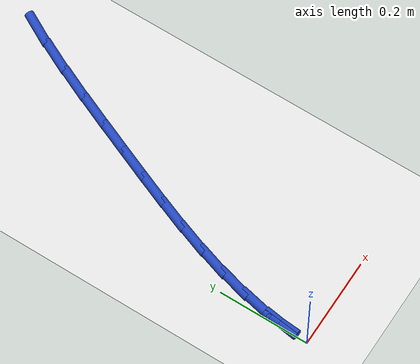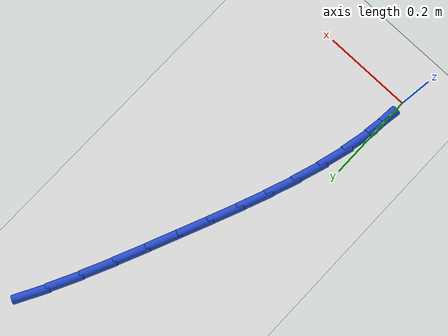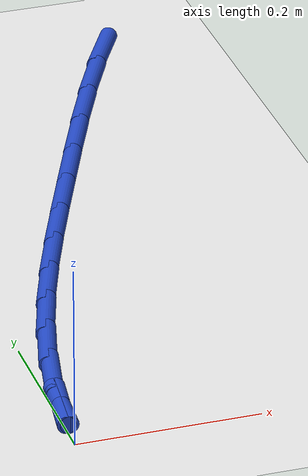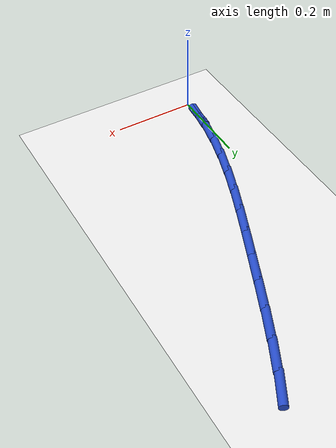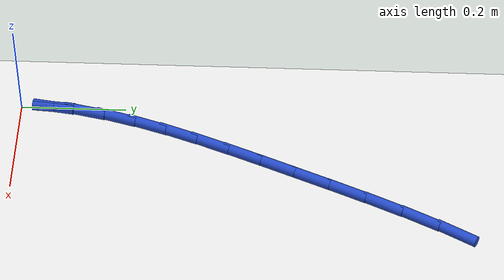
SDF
<sdf version="1.6">
 <world name="default">
  <model name="ground_plane">
   <static>1</static>
   <link name="link">
    <collision name="collision">
     <geometry><plane><normal>0 0 1</normal><size>100 100</size></plane></geometry>
     <surface><friction><ode><mu>100</mu><mu2>50</mu2></ode></friction></surface>
    </collision>
    <visual name="visual">
     <cast_shadows>0</cast_shadows>
     <geometry><plane><normal>0 0 1</normal><size>100 100</size></plane></geometry>
     <material>
      <script><uri>file://media/materials/scripts/gazebo.material</uri><name>Gazebo/WhiteGlow</name></script>
     </material>
    </visual>
   </link>
  </model>
  <model name="line">
   <link name="link_1">
    <pose>0.004672179094915834 0.06259822107621331 0.01 0 1.57 1.4215199979479367</pose>
    <collision name="collision">
     <geometry><cylinder><radius>0.01</radius><length>0.08</length></cylinder></geometry>
    </collision>
    <visual name="visual">
     <material>
      <script><name>Gazebo/Blue</name><uri>file://media/materials/scripts/gazebo.material</uri></script>
     </material>
     <geometry><cylinder><radius>0.01</radius><length>0.08</length></cylinder></geometry>
    </visual>
   </link>
   <link name="link_2">
    <pose>0.013919111966793286 0.12408249158248674 0.01 0 1.57 1.3548092900911957</pose>
    <collision name="collision">
     <geometry><cylinder><radius>0.01</radius><length>0.08</length></cylinder></geometry>
    </collision>
    <visual name="visual">
     <material>
      <script><name>Gazebo/Blue</name><uri>file://media/materials/scripts/gazebo.material</uri></script>
     </material>
     <geometry><cylinder><radius>0.01</radius><length>0.08</length></cylinder></geometry>
    </visual>
   </link>
   <link name="link_3">
    <pose>0.027253811271089255 0.18485787602229142 0.01 0 1.57 1.2977348618286708</pose>
    <collision name="collision">
     <geometry><cylinder><radius>0.01</radius><length>0.08</length></cylinder></geometry>
    </collision>
    <visual name="visual">
     <material>
      <script><name>Gazebo/Blue</name><uri>file://media/materials/scripts/gazebo.material</uri></script>
     </material>
     <geometry><cylinder><radius>0.01</radius><length>0.08</length></cylinder></geometry>
    </visual>
   </link>
   <link name="link_4">
    <pose>0.04418928966326085 0.24532943889909883 0.01 0 1.57 1.2511521294037746</pose>
    <collision name="collision">
     <geometry><cylinder><radius>0.01</radius><length>0.08</length></cylinder></geometry>
    </collision>
    <visual name="visual">
     <material>
      <script><name>Gazebo/Blue</name><uri>file://media/materials/scripts/gazebo.material</uri></script>
     </material>
     <geometry><cylinder><radius>0.01</radius><length>0.08</length></cylinder></geometry>
    </visual>
   </link>
   <link name="link_5">
    <pose>0.06423855979876497 0.30590224471637995 0.01 0 1.57 1.2153108453634482</pose>
    <collision name="collision">
     <geometry><cylinder><radius>0.01</radius><length>0.08</length></cylinder></geometry>
    </collision>
    <visual name="visual">
     <material>
      <script><name>Gazebo/Blue</name><uri>file://media/materials/scripts/gazebo.material</uri></script>
     </material>
     <geometry><cylinder><radius>0.01</radius><length>0.08</length></cylinder></geometry>
    </visual>
   </link>
   <link name="link_6">
    <pose>0.08691463433305864 0.3669813579776061 0.01 0 1.57 1.1900160568907228</pose>
    <collision name="collision">
     <geometry><cylinder><radius>0.01</radius><length>0.08</length></cylinder></geometry>
    </collision>
    <visual name="visual">
     <material>
      <script><name>Gazebo/Blue</name><uri>file://media/materials/scripts/gazebo.material</uri></script>
     </material>
     <geometry><cylinder><radius>0.01</radius><length>0.08</length></cylinder></geometry>
    </visual>
   </link>
   <link name="link_7">
    <pose>0.11173052592159896 0.42897184318624865 0.01 0 1.57 1.1747832181347655</pose>
    <collision name="collision">
     <geometry><cylinder><radius>0.01</radius><length>0.08</length></cylinder></geometry>
    </collision>
    <visual name="visual">
     <material>
      <script><name>Gazebo/Blue</name><uri>file://media/materials/scripts/gazebo.material</uri></script>
     </material>
     <geometry><cylinder><radius>0.01</radius><length>0.08</length></cylinder></geometry>
    </visual>
   </link>
   <link name="link_8">
    <pose>0.13819924721984284 0.49227876484577865 0.01 0 1.57 1.1689107858006513</pose>
    <collision name="collision">
     <geometry><cylinder><radius>0.01</radius><length>0.08</length></cylinder></geometry>
    </collision>
    <visual name="visual">
     <material>
      <script><name>Gazebo/Blue</name><uri>file://media/materials/scripts/gazebo.material</uri></script>
     </material>
     <geometry><cylinder><radius>0.01</radius><length>0.08</length></cylinder></geometry>
    </visual>
   </link>
   <link name="link_9">
    <pose>0.1658357450847726 0.5573031283485212 0.01 0 1.57 1.1662411605148078</pose>
    <collision name="collision">
     <geometry><cylinder><radius>0.01</radius><length>0.08</length></cylinder></geometry>
    </collision>
    <visual name="visual">
     <material>
      <script><name>Gazebo/Blue</name><uri>file://media/materials/scripts/gazebo.material</uri></script>
     </material>
     <geometry><cylinder><radius>0.01</radius><length>0.08</length></cylinder></geometry>
    </visual>
   </link>
   <link name="link_10">
    <pose>0.19438120061094602 0.6239711644041185 0.01 0 1.57 1.15618937188593</pose>
    <collision name="collision">
     <geometry><cylinder><radius>0.01</radius><length>0.08</length></cylinder></geometry>
    </collision>
    <visual name="visual">
     <material>
      <script><name>Gazebo/Blue</name><uri>file://media/materials/scripts/gazebo.material</uri></script>
     </material>
     <geometry><cylinder><radius>0.01</radius><length>0.08</length></cylinder></geometry>
    </visual>
   </link>
   <link name="link_11">
    <pose>0.22401203928349211 0.6912957007835717 0.01 0 1.57 1.1375296518979918</pose>
    <collision name="collision">
     <geometry><cylinder><radius>0.01</radius><length>0.08</length></cylinder></geometry>
    </collision>
    <visual name="visual">
     <material>
      <script><name>Gazebo/Blue</name><uri>file://media/materials/scripts/gazebo.material</uri></script>
     </material>
     <geometry><cylinder><radius>0.01</radius><length>0.08</length></cylinder></geometry>
    </visual>
   </link>
   <link name="link_12">
    <pose>0.2549541209332035 0.7581858224467691 0.01 0 1.57 1.1096389158129083</pose>
    <collision name="collision">
     <geometry><cylinder><radius>0.01</radius><length>0.08</length></cylinder></geometry>
    </collision>
    <visual name="visual">
     <material>
      <script><name>Gazebo/Blue</name><uri>file://media/materials/scripts/gazebo.material</uri></script>
     </material>
     <geometry><cylinder><radius>0.01</radius><length>0.08</length></cylinder></geometry>
    </visual>
   </link>
   <link name="link_13">
    <pose>0.28743330539087275 0.8235506143535989 0.01 0 1.57 1.0712571992682203</pose>
    <collision name="collision">
     <geometry><cylinder><radius>0.01</radius><length>0.08</length></cylinder></geometry>
    </collision>
    <visual name="visual">
     <material>
      <script><name>Gazebo/Blue</name><uri>file://media/materials/scripts/gazebo.material</uri></script>
     </material>
     <geometry><cylinder><radius>0.01</radius><length>0.08</length></cylinder></geometry>
    </visual>
   </link>
   <link name="link_111">
    <pose>0.00477640601366763 0.062424550956453634 0.01 0 1.57 1.4944302600492154</pose>
    <collision name="collision">
     <geometry><cylinder><radius>0.01</radius><length>0.08</length></cylinder></geometry>
    </collision>
    <visual name="visual">
     <material>
      <script><name>Gazebo/Blue</name><uri>file://media/materials/scripts/gazebo.material</uri></script>
     </material>
     <geometry><cylinder><radius>0.01</radius><length>0.08</length></cylinder></geometry>
    </visual>
   </link>
  </model>
 </world>
</sdf>
